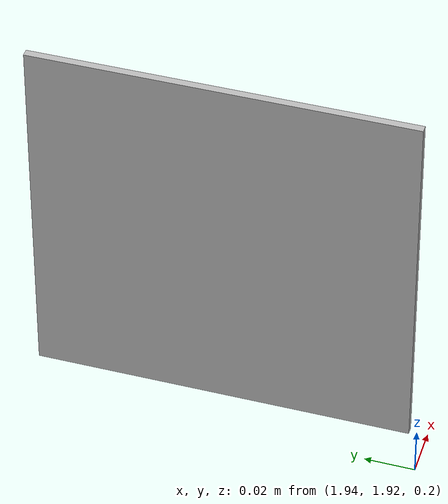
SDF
<sdf version="1.4">
  <world name="default">
    <plugin name="ros_link_attacher_plugin" filename="libgazebo_ros_link_attacher.so"/>
    <scene>
      <ambient>0.4 0.4 0.4 1</ambient>
      <background>0.7 0.7 0.7 1</background>
      <shadows>true</shadows>
    </scene>

    <!-- Aruco marker -->
    <model name='Marker0'>
      <static>1</static>
      <link name='link'>
        <visual name='visual'>
          <geometry>
            <mesh>
              <uri>model://marker0/meshes/Marker0.dae</uri>
              <scale>0.3 0.3 0.3</scale>
            </mesh>
          </geometry>
        </visual>
        <self_collide>0</self_collide>
        <enable_wind>0</enable_wind>
        <kinematic>0</kinematic>
      </link>
      <pose>1.95 2 0.21 0 -0 0</pose>
    </model>

    <!-- A global light source -->
    <include>
      <uri>model://sun</uri>
    </include>

    <!-- A ground plane -->
    <include>
      <uri>model://ground_plane</uri>
    </include>

    <physics type="ode">
      <real_time_update_rate>1000.0</real_time_update_rate>
      <max_step_size>0.001</max_step_size>
      <real_time_factor>1</real_time_factor>
      <ode>
        <solver>
          <type>quick</type>
          <iters>150</iters>
          <precon_iters>0</precon_iters>
          <sor>1.400000</sor>
          <use_dynamic_moi_rescaling>1</use_dynamic_moi_rescaling>
        </solver>
        <constraints>
          <cfm>0.00001</cfm>
          <erp>0.2</erp>
          <contact_max_correcting_vel>2000.000000</contact_max_correcting_vel>
          <contact_surface_layer>0.01000</contact_surface_layer>
        </constraints>
      </ode>
    </physics>
  </world>

</sdf>
